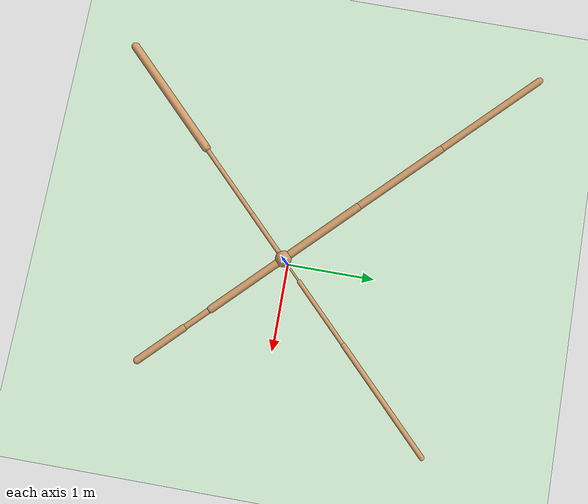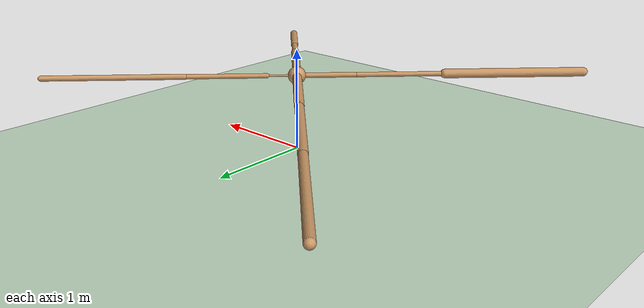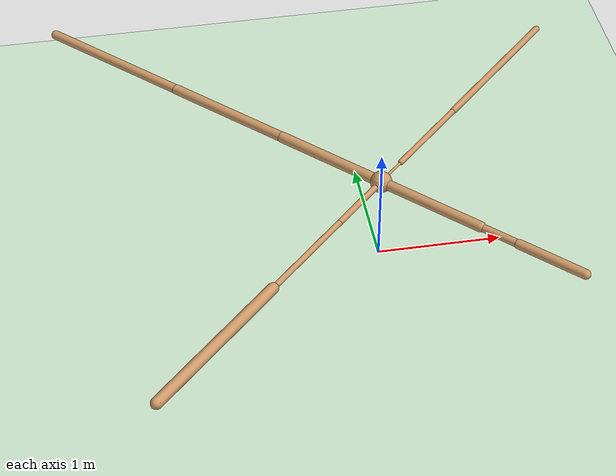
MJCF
<mujoco model="ant">
  <compiler angle="degree" coordinate="local" inertiafromgeom="true" />
  <option integrator="RK4" timestep="0.01" />
  <custom>
    <numeric data="0.0 0.0 0.55 1.0 0.0 0.0 0.0 0.0 1.0 0.0 -1.0 0.0 -1.0 0.0 1.0" name="init_qpos" />
  </custom>
  <default>
    <joint armature="1" damping="1" limited="true" />
    <geom conaffinity="0" condim="3" density="5.0" friction="1 0.5 0.5" margin="0.01" rgba="0.8 0.6 0.4 1" />
  </default>
  <asset>
    <texture builtin="gradient" height="100" rgb1="1 1 1" rgb2="0 0 0" type="skybox" width="100" />
    <texture builtin="flat" height="1278" mark="cross" markrgb="1 1 1" name="texgeom" random="0.01" rgb1="0.8 0.6 0.4" rgb2="0.8 0.6 0.4" type="cube" width="127" />
    <texture builtin="checker" height="100" name="texplane" rgb1="0 0 0" rgb2="0.8 0.8 0.8" type="2d" width="100" />
    <material name="MatPlane" reflectance="0.5" shininess="1" specular="1" texrepeat="60 60" texture="texplane" />
    <material name="geom" texture="texgeom" texuniform="true" />
  </asset>
  <worldbody>
    <light cutoff="100" diffuse="1 1 1" dir="-0 0 -1.3" directional="true" exponent="1" pos="0 0 1.3" specular=".1 .1 .1" />
    <geom conaffinity="1" condim="3" material="MatPlane" name="floor" pos="0 0 0" rgba="0.8 0.9 0.8 1" size="40 40 40" type="plane" />
    <body name="torso" pos="0 0 0.75">
      <camera name="track" mode="trackcom" pos="0 -11 5" xyaxes="1 0 0 0 0.5 1" />
      <geom name="torso_geom" pos="0 0 0" size="0.08639461547136307" type="sphere" />
      <joint armature="0" damping="0" limited="false" margin="0.01" name="root" pos="0 0 0" type="free" />
      <body name="front_left_leg" pos="0 0 0">
        <geom fromto="0 0 0 0.202957421541214 0.202957421541214 0" name="aux_1_geom" size="0.010678663849830627" type="capsule" />
        <body name="aux_1" pos="0.202957421541214 0.202957421541214 0">
          <joint axis="0 0 1" name="hip_1" pos="0.0 0.0 0.0" range="-30 30" type="hinge" />
          <geom fromto="0 0 0 0.5541680455207825 0.5541680455207825 0" name="left_leg_geom" size="0.023167826235294342" type="capsule" />
          <body name="left_leg_geom_aux" pos="0.5541680455207825 0.5541680455207825 0">
            <joint axis="-1 1 0" name="ankle_1" pos="0.0 0.0 0.0" range="30 70" type="hinge" />
            <geom fromto="0 0 0 0.9586087465286255 0.9586087465286255 0" name="left_ankle_geom" size="0.027227848768234253" type="capsule" />
          </body>
        </body>
      </body>
      <body name="front_right_leg" pos="0 0 0">
        <geom fromto="0 0 0 -0.6670106053352356 0.6670106053352356 0" name="aux_2_geom" size="0.04401807859539986" type="capsule" />
        <body name="aux_2" pos="-0.6670106053352356 0.6670106053352356 0">
          <joint axis="0 0 1" name="hip_2" pos="0.0 0.0 0.0" range="-30 30" type="hinge" />
          <geom fromto="0 0 0 -0.756494402885437 0.756494402885437 0" name="right_leg_geom" size="0.04100077599287033" type="capsule" />
          <body name="right_leg_geom_aux" pos="-0.756494402885437 0.756494402885437 0">
            <joint axis="1 1 0" name="ankle_2" pos="0.0 0.0 0.0" range="-70 -30" type="hinge" />
            <geom fromto="0 0 0 -0.9213303923606873 0.9213303923606873 0" name="right_ankle_geom" size="0.03820204734802246" type="capsule" />
          </body>
        </body>
      </body>
      <body name="back_leg" pos="0 0 0">
        <geom fromto="0 0 0 -0.40220311284065247 -0.40220311284065247 0" name="aux_3_geom" size="0.024627767503261566" type="capsule" />
        <body name="aux_3" pos="-0.40220311284065247 -0.40220311284065247 0">
          <joint axis="0 0 1" name="hip_3" pos="0.0 0.0 0.0" range="-30 30" type="hinge" />
          <geom fromto="0 0 0 -0.611912727355957 -0.611912727355957 0" name="back_leg_geom" size="0.023540236055850983" type="capsule" />
          <body name="back_leg_geom_aux" pos="-0.611912727355957 -0.611912727355957 0">
            <joint axis="-1 1 0" name="ankle_3" pos="0.0 0.0 0.0" range="-70 -30" type="hinge" />
            <geom fromto="0 0 0 -0.9606748819351196 -0.9606748819351196 0" name="third_ankle_geom" size="0.045164480805397034" type="capsule" />
          </body>
        </body>
      </body>
      <body name="right_back_leg" pos="0 0 0">
        <geom fromto="0 0 0 0.6344804167747498 -0.6344804167747498 0" name="aux_4_geom" size="0.041719838976860046" type="capsule" />
        <body name="aux_4" pos="0.6344804167747498 -0.6344804167747498 0">
          <joint axis="0 0 1" name="hip_4" pos="0.0 0.0 0.0" range="-30 30" type="hinge" />
          <geom fromto="0 0 0 0.23443448543548584 -0.23443448543548584 0" name="rightback_leg_geom" size="0.03170965611934662" type="capsule" />
          <body name="rightback_leg_geom_aux" pos="0.23443448543548584 -0.23443448543548584 0">
            <joint axis="1 1 0" name="ankle_4" pos="0.0 0.0 0.0" range="30 70" type="hinge" />
            <geom fromto="0 0 0 0.39970648288726807 -0.39970648288726807 0" name="fourth_ankle_geom" size="0.03858193755149841" type="capsule" />
          </body>
        </body>
      </body>
    </body>
  </worldbody>
  <actuator>
    <motor ctrllimited="true" ctrlrange="-1.0 1.0" joint="hip_4" gear="150" />
    <motor ctrllimited="true" ctrlrange="-1.0 1.0" joint="ankle_4" gear="150" />
    <motor ctrllimited="true" ctrlrange="-1.0 1.0" joint="hip_1" gear="150" />
    <motor ctrllimited="true" ctrlrange="-1.0 1.0" joint="ankle_1" gear="150" />
    <motor ctrllimited="true" ctrlrange="-1.0 1.0" joint="hip_2" gear="150" />
    <motor ctrllimited="true" ctrlrange="-1.0 1.0" joint="ankle_2" gear="150" />
    <motor ctrllimited="true" ctrlrange="-1.0 1.0" joint="hip_3" gear="150" />
    <motor ctrllimited="true" ctrlrange="-1.0 1.0" joint="ankle_3" gear="150" />
  </actuator>
</mujoco>
